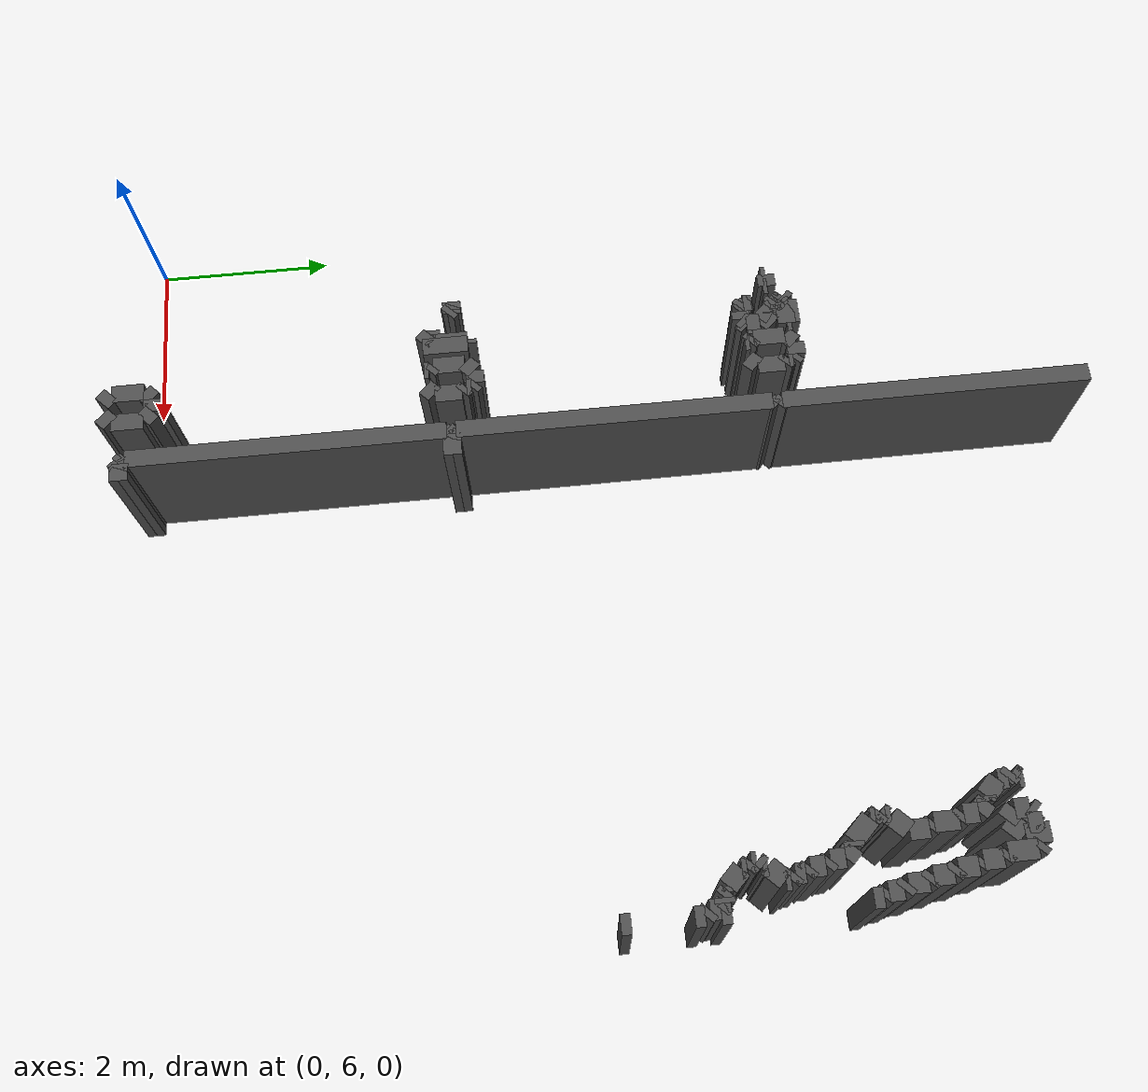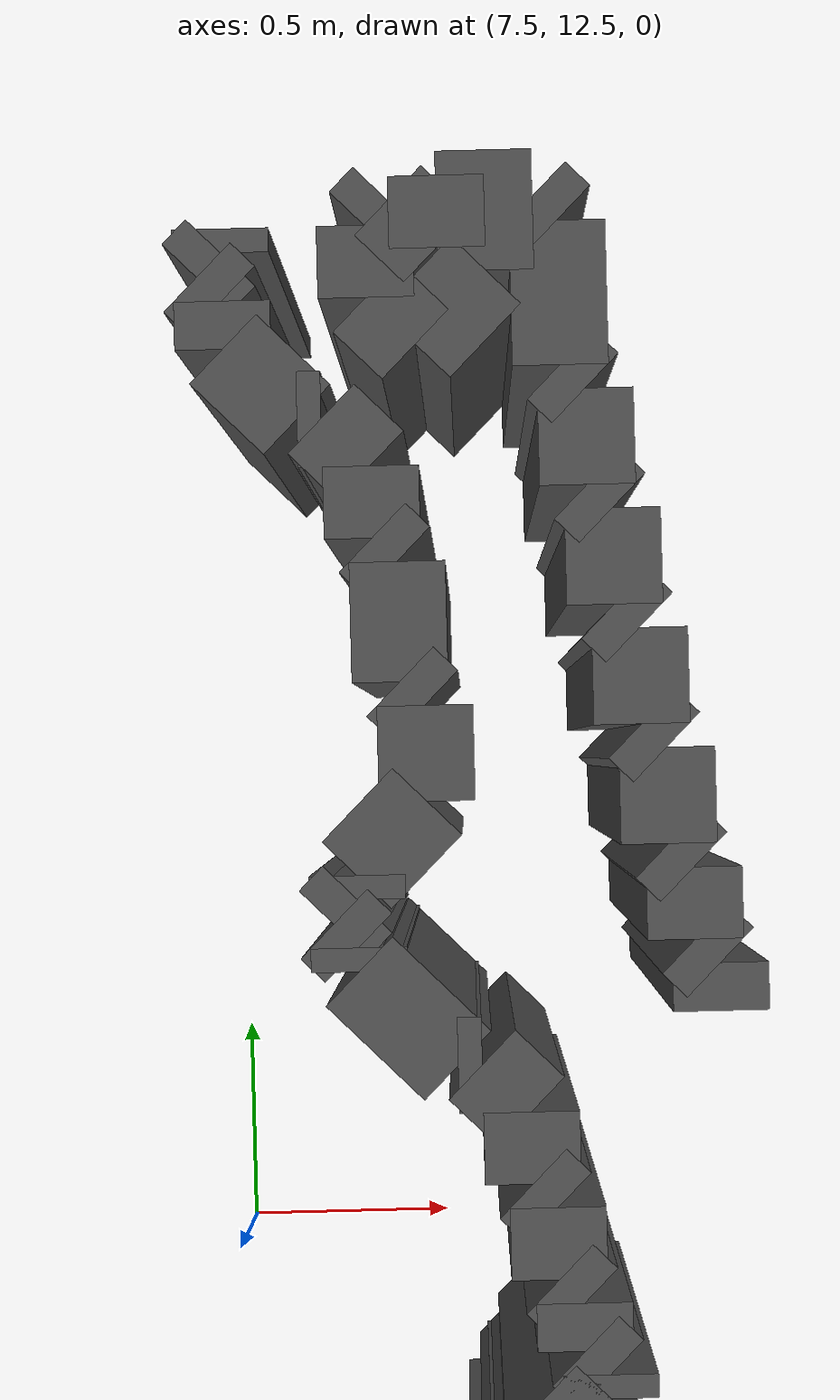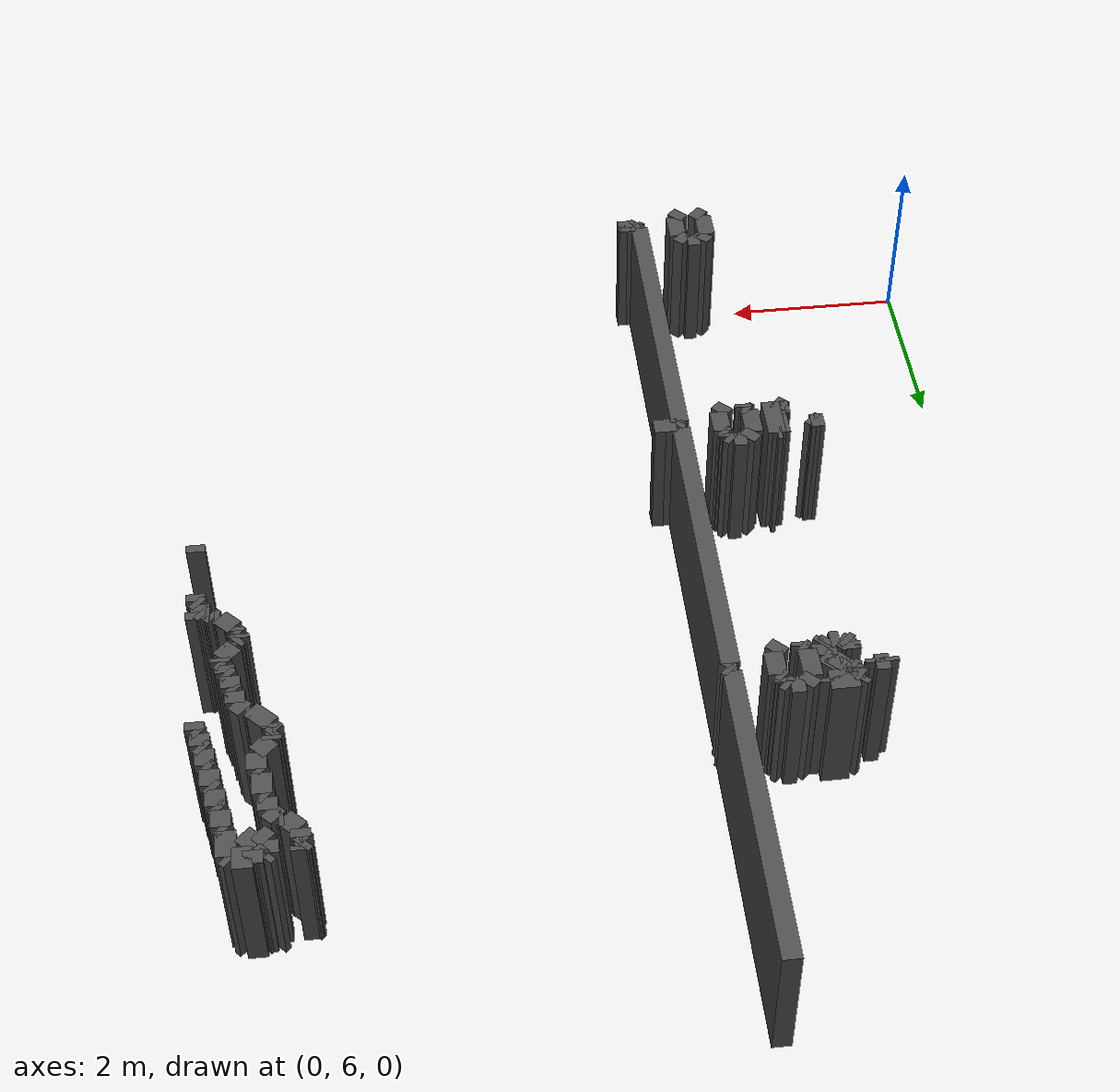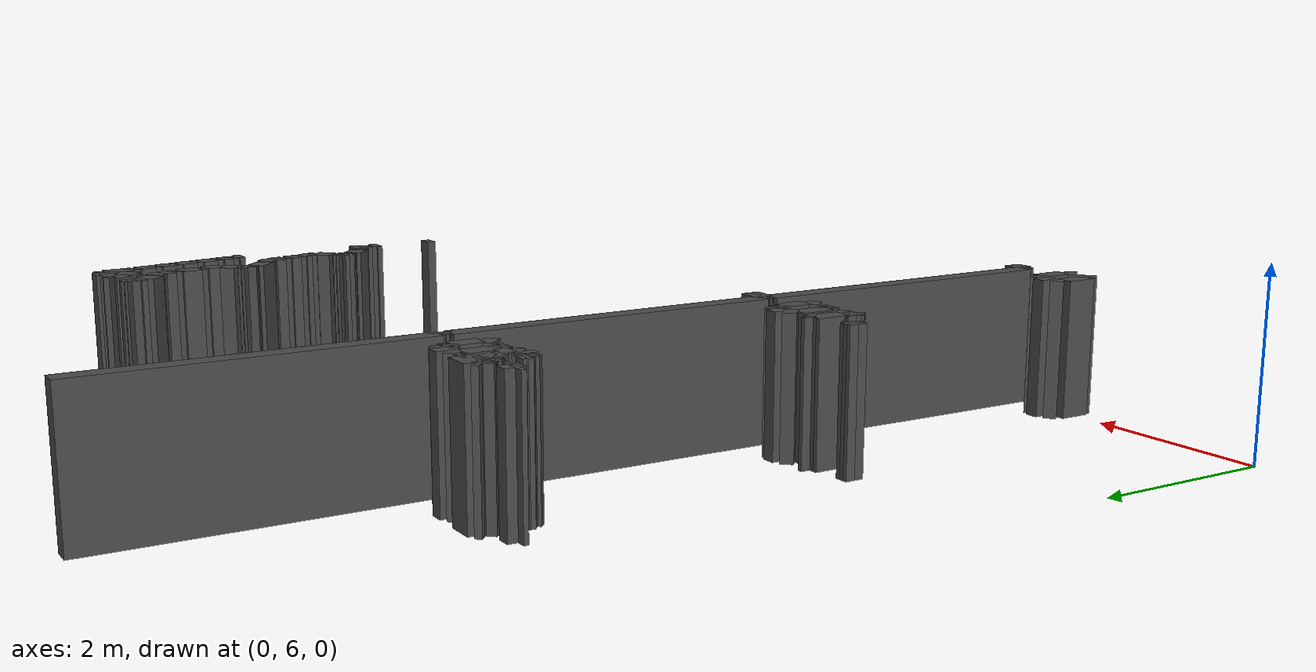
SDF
<sdf version="1.9">
 <model name="generated_walls">
  <static>true</static>
  <link name="wall_133_0">
   <pose>1.650 13.125 0.75 0 0 1.571</pose>
   <collision name="collision"><geometry><box><size>0.050 0.2 1.5</size></box></geometry></collision>
   <visual name="visual">
    <geometry><box><size>0.050 0.2 1.5</size></box></geometry>
    <material><ambient>0.3 0.3 0.3 1</ambient></material>
   </visual>
  </link>
  <link name="wall_133_1">
   <pose>1.725 13.150 0.75 0 0 0.000</pose>
   <collision name="collision"><geometry><box><size>0.150 0.2 1.5</size></box></geometry></collision>
   <visual name="visual">
    <geometry><box><size>0.150 0.2 1.5</size></box></geometry>
    <material><ambient>0.3 0.3 0.3 1</ambient></material>
   </visual>
  </link>
  <link name="wall_133_2">
   <pose>1.800 13.125 0.75 0 0 -1.571</pose>
   <collision name="collision"><geometry><box><size>0.050 0.2 1.5</size></box></geometry></collision>
   <visual name="visual">
    <geometry><box><size>0.050 0.2 1.5</size></box></geometry>
    <material><ambient>0.3 0.3 0.3 1</ambient></material>
   </visual>
  </link>
  <link name="wall_137_0">
   <pose>2.500 12.825 0.75 0 0 1.571</pose>
   <collision name="collision"><geometry><box><size>0.050 0.2 1.5</size></box></geometry></collision>
   <visual name="visual">
    <geometry><box><size>0.050 0.2 1.5</size></box></geometry>
    <material><ambient>0.3 0.3 0.3 1</ambient></material>
   </visual>
  </link>
  <link name="wall_137_1">
   <pose>2.475 12.875 0.75 0 0 2.356</pose>
   <collision name="collision"><geometry><box><size>0.071 0.2 1.5</size></box></geometry></collision>
   <visual name="visual">
    <geometry><box><size>0.071 0.2 1.5</size></box></geometry>
    <material><ambient>0.3 0.3 0.3 1</ambient></material>
   </visual>
  </link>
  <link name="wall_137_2">
   <pose>2.450 13.075 0.75 0 0 1.571</pose>
   <collision name="collision"><geometry><box><size>0.350 0.2 1.5</size></box></geometry></collision>
   <visual name="visual">
    <geometry><box><size>0.350 0.2 1.5</size></box></geometry>
    <material><ambient>0.3 0.3 0.3 1</ambient></material>
   </visual>
  </link>
  <link name="wall_137_3">
   <pose>2.500 13.300 0.75 0 0 0.785</pose>
   <collision name="collision"><geometry><box><size>0.141 0.2 1.5</size></box></geometry></collision>
   <visual name="visual">
    <geometry><box><size>0.141 0.2 1.5</size></box></geometry>
    <material><ambient>0.3 0.3 0.3 1</ambient></material>
   </visual>
  </link>
  <link name="wall_137_4">
   <pose>2.625 13.350 0.75 0 0 0.000</pose>
   <collision name="collision"><geometry><box><size>0.150 0.2 1.5</size></box></geometry></collision>
   <visual name="visual">
    <geometry><box><size>0.150 0.2 1.5</size></box></geometry>
    <material><ambient>0.3 0.3 0.3 1</ambient></material>
   </visual>
  </link>
  <link name="wall_137_5">
   <pose>2.725 13.325 0.75 0 0 -0.785</pose>
   <collision name="collision"><geometry><box><size>0.071 0.2 1.5</size></box></geometry></collision>
   <visual name="visual">
    <geometry><box><size>0.071 0.2 1.5</size></box></geometry>
    <material><ambient>0.3 0.3 0.3 1</ambient></material>
   </visual>
  </link>
  <link name="wall_137_6">
   <pose>2.750 13.275 0.75 0 0 -1.571</pose>
   <collision name="collision"><geometry><box><size>0.050 0.2 1.5</size></box></geometry></collision>
   <visual name="visual">
    <geometry><box><size>0.050 0.2 1.5</size></box></geometry>
    <material><ambient>0.3 0.3 0.3 1</ambient></material>
   </visual>
  </link>
  <link name="wall_137_7">
   <pose>2.775 13.225 0.75 0 0 -0.785</pose>
   <collision name="collision"><geometry><box><size>0.071 0.2 1.5</size></box></geometry></collision>
   <visual name="visual">
    <geometry><box><size>0.071 0.2 1.5</size></box></geometry>
    <material><ambient>0.3 0.3 0.3 1</ambient></material>
   </visual>
  </link>
  <link name="wall_137_8">
   <pose>2.800 13.050 0.75 0 0 -1.571</pose>
   <collision name="collision"><geometry><box><size>0.300 0.2 1.5</size></box></geometry></collision>
   <visual name="visual">
    <geometry><box><size>0.300 0.2 1.5</size></box></geometry>
    <material><ambient>0.3 0.3 0.3 1</ambient></material>
   </visual>
  </link>
  <link name="wall_137_9">
   <pose>2.750 12.850 0.75 0 0 -2.356</pose>
   <collision name="collision"><geometry><box><size>0.141 0.2 1.5</size></box></geometry></collision>
   <visual name="visual">
    <geometry><box><size>0.141 0.2 1.5</size></box></geometry>
    <material><ambient>0.3 0.3 0.3 1</ambient></material>
   </visual>
  </link>
  <link name="wall_138_0">
   <pose>2.025 12.825 0.75 0 0 2.356</pose>
   <collision name="collision"><geometry><box><size>0.071 0.2 1.5</size></box></geometry></collision>
   <visual name="visual">
    <geometry><box><size>0.071 0.2 1.5</size></box></geometry>
    <material><ambient>0.3 0.3 0.3 1</ambient></material>
   </visual>
  </link>
  <link name="wall_138_1">
   <pose>2.000 12.900 0.75 0 0 1.571</pose>
   <collision name="collision"><geometry><box><size>0.100 0.2 1.5</size></box></geometry></collision>
   <visual name="visual">
    <geometry><box><size>0.100 0.2 1.5</size></box></geometry>
    <material><ambient>0.3 0.3 0.3 1</ambient></material>
   </visual>
  </link>
  <link name="wall_138_2">
   <pose>2.000 12.925 0.75 0 0 -1.571</pose>
   <collision name="collision"><geometry><box><size>0.050 0.2 1.5</size></box></geometry></collision>
   <visual name="visual">
    <geometry><box><size>0.050 0.2 1.5</size></box></geometry>
    <material><ambient>0.3 0.3 0.3 1</ambient></material>
   </visual>
  </link>
  <link name="wall_138_3">
   <pose>2.050 12.850 0.75 0 0 -0.785</pose>
   <collision name="collision"><geometry><box><size>0.141 0.2 1.5</size></box></geometry></collision>
   <visual name="visual">
    <geometry><box><size>0.141 0.2 1.5</size></box></geometry>
    <material><ambient>0.3 0.3 0.3 1</ambient></material>
   </visual>
  </link>
  <link name="wall_138_4">
   <pose>2.150 12.800 0.75 0 0 0.000</pose>
   <collision name="collision"><geometry><box><size>0.100 0.2 1.5</size></box></geometry></collision>
   <visual name="visual">
    <geometry><box><size>0.100 0.2 1.5</size></box></geometry>
    <material><ambient>0.3 0.3 0.3 1</ambient></material>
   </visual>
  </link>
  <link name="wall_138_5">
   <pose>2.225 12.825 0.75 0 0 0.785</pose>
   <collision name="collision"><geometry><box><size>0.071 0.2 1.5</size></box></geometry></collision>
   <visual name="visual">
    <geometry><box><size>0.071 0.2 1.5</size></box></geometry>
    <material><ambient>0.3 0.3 0.3 1</ambient></material>
   </visual>
  </link>
  <link name="wall_138_6">
   <pose>2.250 12.925 0.75 0 0 1.571</pose>
   <collision name="collision"><geometry><box><size>0.150 0.2 1.5</size></box></geometry></collision>
   <visual name="visual">
    <geometry><box><size>0.150 0.2 1.5</size></box></geometry>
    <material><ambient>0.3 0.3 0.3 1</ambient></material>
   </visual>
  </link>
  <link name="wall_138_7">
   <pose>2.175 13.075 0.75 0 0 2.356</pose>
   <collision name="collision"><geometry><box><size>0.212 0.2 1.5</size></box></geometry></collision>
   <visual name="visual">
    <geometry><box><size>0.212 0.2 1.5</size></box></geometry>
    <material><ambient>0.3 0.3 0.3 1</ambient></material>
   </visual>
  </link>
  <link name="wall_138_8">
   <pose>2.075 13.150 0.75 0 0 3.142</pose>
   <collision name="collision"><geometry><box><size>0.050 0.2 1.5</size></box></geometry></collision>
   <visual name="visual">
    <geometry><box><size>0.050 0.2 1.5</size></box></geometry>
    <material><ambient>0.3 0.3 0.3 1</ambient></material>
   </visual>
  </link>
  <link name="wall_138_9">
   <pose>2.025 13.175 0.75 0 0 2.356</pose>
   <collision name="collision"><geometry><box><size>0.071 0.2 1.5</size></box></geometry></collision>
   <visual name="visual">
    <geometry><box><size>0.071 0.2 1.5</size></box></geometry>
    <material><ambient>0.3 0.3 0.3 1</ambient></material>
   </visual>
  </link>
  <link name="wall_138_10">
   <pose>2.000 13.225 0.75 0 0 1.571</pose>
   <collision name="collision"><geometry><box><size>0.050 0.2 1.5</size></box></geometry></collision>
   <visual name="visual">
    <geometry><box><size>0.050 0.2 1.5</size></box></geometry>
    <material><ambient>0.3 0.3 0.3 1</ambient></material>
   </visual>
  </link>
  <link name="wall_138_11">
   <pose>1.975 13.275 0.75 0 0 2.356</pose>
   <collision name="collision"><geometry><box><size>0.071 0.2 1.5</size></box></geometry></collision>
   <visual name="visual">
    <geometry><box><size>0.071 0.2 1.5</size></box></geometry>
    <material><ambient>0.3 0.3 0.3 1</ambient></material>
   </visual>
  </link>
  <link name="wall_138_12">
   <pose>1.975 13.325 0.75 0 0 0.785</pose>
   <collision name="collision"><geometry><box><size>0.071 0.2 1.5</size></box></geometry></collision>
   <visual name="visual">
    <geometry><box><size>0.071 0.2 1.5</size></box></geometry>
    <material><ambient>0.3 0.3 0.3 1</ambient></material>
   </visual>
  </link>
  <link name="wall_138_13">
   <pose>2.150 13.350 0.75 0 0 0.000</pose>
   <collision name="collision"><geometry><box><size>0.300 0.2 1.5</size></box></geometry></collision>
   <visual name="visual">
    <geometry><box><size>0.300 0.2 1.5</size></box></geometry>
    <material><ambient>0.3 0.3 0.3 1</ambient></material>
   </visual>
  </link>
  <link name="wall_138_14">
   <pose>2.300 13.325 0.75 0 0 -1.571</pose>
   <collision name="collision"><geometry><box><size>0.050 0.2 1.5</size></box></geometry></collision>
   <visual name="visual">
    <geometry><box><size>0.050 0.2 1.5</size></box></geometry>
    <material><ambient>0.3 0.3 0.3 1</ambient></material>
   </visual>
  </link>
  <link name="wall_138_15">
   <pose>2.175 13.300 0.75 0 0 3.142</pose>
   <collision name="collision"><geometry><box><size>0.250 0.2 1.5</size></box></geometry></collision>
   <visual name="visual">
    <geometry><box><size>0.250 0.2 1.5</size></box></geometry>
    <material><ambient>0.3 0.3 0.3 1</ambient></material>
   </visual>
  </link>
  <link name="wall_138_16">
   <pose>2.025 13.275 0.75 0 0 -2.356</pose>
   <collision name="collision"><geometry><box><size>0.071 0.2 1.5</size></box></geometry></collision>
   <visual name="visual">
    <geometry><box><size>0.071 0.2 1.5</size></box></geometry>
    <material><ambient>0.3 0.3 0.3 1</ambient></material>
   </visual>
  </link>
  <link name="wall_138_17">
   <pose>2.050 13.200 0.75 0 0 -0.785</pose>
   <collision name="collision"><geometry><box><size>0.141 0.2 1.5</size></box></geometry></collision>
   <visual name="visual">
    <geometry><box><size>0.141 0.2 1.5</size></box></geometry>
    <material><ambient>0.3 0.3 0.3 1</ambient></material>
   </visual>
  </link>
  <link name="wall_138_18">
   <pose>2.125 13.150 0.75 0 0 0.000</pose>
   <collision name="collision"><geometry><box><size>0.050 0.2 1.5</size></box></geometry></collision>
   <visual name="visual">
    <geometry><box><size>0.050 0.2 1.5</size></box></geometry>
    <material><ambient>0.3 0.3 0.3 1</ambient></material>
   </visual>
  </link>
  <link name="wall_138_19">
   <pose>2.225 13.075 0.75 0 0 -0.785</pose>
   <collision name="collision"><geometry><box><size>0.212 0.2 1.5</size></box></geometry></collision>
   <visual name="visual">
    <geometry><box><size>0.212 0.2 1.5</size></box></geometry>
    <material><ambient>0.3 0.3 0.3 1</ambient></material>
   </visual>
  </link>
  <link name="wall_138_20">
   <pose>2.300 12.925 0.75 0 0 -1.571</pose>
   <collision name="collision"><geometry><box><size>0.150 0.2 1.5</size></box></geometry></collision>
   <visual name="visual">
    <geometry><box><size>0.150 0.2 1.5</size></box></geometry>
    <material><ambient>0.3 0.3 0.3 1</ambient></material>
   </visual>
  </link>
  <link name="wall_138_21">
   <pose>2.275 12.825 0.75 0 0 -2.356</pose>
   <collision name="collision"><geometry><box><size>0.071 0.2 1.5</size></box></geometry></collision>
   <visual name="visual">
    <geometry><box><size>0.071 0.2 1.5</size></box></geometry>
    <material><ambient>0.3 0.3 0.3 1</ambient></material>
   </visual>
  </link>
  <link name="wall_148_0">
   <pose>1.775 9.575 0.75 0 0 2.356</pose>
   <collision name="collision"><geometry><box><size>0.071 0.2 1.5</size></box></geometry></collision>
   <visual name="visual">
    <geometry><box><size>0.071 0.2 1.5</size></box></geometry>
    <material><ambient>0.3 0.3 0.3 1</ambient></material>
   </visual>
  </link>
  <link name="wall_148_1">
   <pose>1.700 9.600 0.75 0 0 3.142</pose>
   <collision name="collision"><geometry><box><size>0.100 0.2 1.5</size></box></geometry></collision>
   <visual name="visual">
    <geometry><box><size>0.100 0.2 1.5</size></box></geometry>
    <material><ambient>0.3 0.3 0.3 1</ambient></material>
   </visual>
  </link>
  <link name="wall_148_2">
   <pose>1.725 9.600 0.75 0 0 0.000</pose>
   <collision name="collision"><geometry><box><size>0.150 0.2 1.5</size></box></geometry></collision>
   <visual name="visual">
    <geometry><box><size>0.150 0.2 1.5</size></box></geometry>
    <material><ambient>0.3 0.3 0.3 1</ambient></material>
   </visual>
  </link>
  <link name="wall_149_0">
   <pose>2.500 9.275 0.75 0 0 1.571</pose>
   <collision name="collision"><geometry><box><size>0.050 0.2 1.5</size></box></geometry></collision>
   <visual name="visual">
    <geometry><box><size>0.050 0.2 1.5</size></box></geometry>
    <material><ambient>0.3 0.3 0.3 1</ambient></material>
   </visual>
  </link>
  <link name="wall_149_1">
   <pose>2.475 9.325 0.75 0 0 2.356</pose>
   <collision name="collision"><geometry><box><size>0.071 0.2 1.5</size></box></geometry></collision>
   <visual name="visual">
    <geometry><box><size>0.071 0.2 1.5</size></box></geometry>
    <material><ambient>0.3 0.3 0.3 1</ambient></material>
   </visual>
  </link>
  <link name="wall_149_2">
   <pose>2.450 9.525 0.75 0 0 1.571</pose>
   <collision name="collision"><geometry><box><size>0.350 0.2 1.5</size></box></geometry></collision>
   <visual name="visual">
    <geometry><box><size>0.350 0.2 1.5</size></box></geometry>
    <material><ambient>0.3 0.3 0.3 1</ambient></material>
   </visual>
  </link>
  <link name="wall_149_3">
   <pose>2.500 9.750 0.75 0 0 0.785</pose>
   <collision name="collision"><geometry><box><size>0.141 0.2 1.5</size></box></geometry></collision>
   <visual name="visual">
    <geometry><box><size>0.141 0.2 1.5</size></box></geometry>
    <material><ambient>0.3 0.3 0.3 1</ambient></material>
   </visual>
  </link>
  <link name="wall_149_4">
   <pose>2.625 9.800 0.75 0 0 0.000</pose>
   <collision name="collision"><geometry><box><size>0.150 0.2 1.5</size></box></geometry></collision>
   <visual name="visual">
    <geometry><box><size>0.150 0.2 1.5</size></box></geometry>
    <material><ambient>0.3 0.3 0.3 1</ambient></material>
   </visual>
  </link>
  <link name="wall_149_5">
   <pose>2.725 9.775 0.75 0 0 -0.785</pose>
   <collision name="collision"><geometry><box><size>0.071 0.2 1.5</size></box></geometry></collision>
   <visual name="visual">
    <geometry><box><size>0.071 0.2 1.5</size></box></geometry>
    <material><ambient>0.3 0.3 0.3 1</ambient></material>
   </visual>
  </link>
  <link name="wall_149_6">
   <pose>2.750 9.725 0.75 0 0 -1.571</pose>
   <collision name="collision"><geometry><box><size>0.050 0.2 1.5</size></box></geometry></collision>
   <visual name="visual">
    <geometry><box><size>0.050 0.2 1.5</size></box></geometry>
    <material><ambient>0.3 0.3 0.3 1</ambient></material>
   </visual>
  </link>
  <link name="wall_149_7">
   <pose>2.775 9.675 0.75 0 0 -0.785</pose>
   <collision name="collision"><geometry><box><size>0.071 0.2 1.5</size></box></geometry></collision>
   <visual name="visual">
    <geometry><box><size>0.071 0.2 1.5</size></box></geometry>
    <material><ambient>0.3 0.3 0.3 1</ambient></material>
   </visual>
  </link>
  <link name="wall_149_8">
   <pose>2.800 9.500 0.75 0 0 -1.571</pose>
   <collision name="collision"><geometry><box><size>0.300 0.2 1.5</size></box></geometry></collision>
   <visual name="visual">
    <geometry><box><size>0.300 0.2 1.5</size></box></geometry>
    <material><ambient>0.3 0.3 0.3 1</ambient></material>
   </visual>
  </link>
  <link name="wall_149_9">
   <pose>2.750 9.300 0.75 0 0 -2.356</pose>
   <collision name="collision"><geometry><box><size>0.141 0.2 1.5</size></box></geometry></collision>
   <visual name="visual">
    <geometry><box><size>0.141 0.2 1.5</size></box></geometry>
    <material><ambient>0.3 0.3 0.3 1</ambient></material>
   </visual>
  </link>
  <link name="wall_150_0">
   <pose>2.100 9.300 0.75 0 0 2.356</pose>
   <collision name="collision"><geometry><box><size>0.141 0.2 1.5</size></box></geometry></collision>
   <visual name="visual">
    <geometry><box><size>0.141 0.2 1.5</size></box></geometry>
    <material><ambient>0.3 0.3 0.3 1</ambient></material>
   </visual>
  </link>
  <link name="wall_150_1">
   <pose>2.025 9.350 0.75 0 0 3.142</pose>
   <collision name="collision"><geometry><box><size>0.050 0.2 1.5</size></box></geometry></collision>
   <visual name="visual">
    <geometry><box><size>0.050 0.2 1.5</size></box></geometry>
    <material><ambient>0.3 0.3 0.3 1</ambient></material>
   </visual>
  </link>
  <link name="wall_150_2">
   <pose>2.050 9.350 0.75 0 0 0.000</pose>
   <collision name="collision"><geometry><box><size>0.100 0.2 1.5</size></box></geometry></collision>
   <visual name="visual">
    <geometry><box><size>0.100 0.2 1.5</size></box></geometry>
    <material><ambient>0.3 0.3 0.3 1</ambient></material>
   </visual>
  </link>
  <link name="wall_150_3">
   <pose>2.125 9.375 0.75 0 0 0.785</pose>
   <collision name="collision"><geometry><box><size>0.071 0.2 1.5</size></box></geometry></collision>
   <visual name="visual">
    <geometry><box><size>0.071 0.2 1.5</size></box></geometry>
    <material><ambient>0.3 0.3 0.3 1</ambient></material>
   </visual>
  </link>
  <link name="wall_150_4">
   <pose>2.150 9.575 0.75 0 0 1.571</pose>
   <collision name="collision"><geometry><box><size>0.350 0.2 1.5</size></box></geometry></collision>
   <visual name="visual">
    <geometry><box><size>0.350 0.2 1.5</size></box></geometry>
    <material><ambient>0.3 0.3 0.3 1</ambient></material>
   </visual>
  </link>
  <link name="wall_150_5">
   <pose>2.175 9.750 0.75 0 0 0.000</pose>
   <collision name="collision"><geometry><box><size>0.050 0.2 1.5</size></box></geometry></collision>
   <visual name="visual">
    <geometry><box><size>0.050 0.2 1.5</size></box></geometry>
    <material><ambient>0.3 0.3 0.3 1</ambient></material>
   </visual>
  </link>
  <link name="wall_150_6">
   <pose>2.200 9.500 0.75 0 0 -1.571</pose>
   <collision name="collision"><geometry><box><size>0.500 0.2 1.5</size></box></geometry></collision>
   <visual name="visual">
    <geometry><box><size>0.500 0.2 1.5</size></box></geometry>
    <material><ambient>0.3 0.3 0.3 1</ambient></material>
   </visual>
  </link>
  <link name="wall_151_0">
   <pose>2.500 5.800 0.75 0 0 2.356</pose>
   <collision name="collision"><geometry><box><size>0.141 0.2 1.5</size></box></geometry></collision>
   <visual name="visual">
    <geometry><box><size>0.141 0.2 1.5</size></box></geometry>
    <material><ambient>0.3 0.3 0.3 1</ambient></material>
   </visual>
  </link>
  <link name="wall_151_1">
   <pose>2.450 6.025 0.75 0 0 1.571</pose>
   <collision name="collision"><geometry><box><size>0.350 0.2 1.5</size></box></geometry></collision>
   <visual name="visual">
    <geometry><box><size>0.350 0.2 1.5</size></box></geometry>
    <material><ambient>0.3 0.3 0.3 1</ambient></material>
   </visual>
  </link>
  <link name="wall_151_2">
   <pose>2.500 6.250 0.75 0 0 0.785</pose>
   <collision name="collision"><geometry><box><size>0.141 0.2 1.5</size></box></geometry></collision>
   <visual name="visual">
    <geometry><box><size>0.141 0.2 1.5</size></box></geometry>
    <material><ambient>0.3 0.3 0.3 1</ambient></material>
   </visual>
  </link>
  <link name="wall_151_3">
   <pose>2.625 6.300 0.75 0 0 0.000</pose>
   <collision name="collision"><geometry><box><size>0.150 0.2 1.5</size></box></geometry></collision>
   <visual name="visual">
    <geometry><box><size>0.150 0.2 1.5</size></box></geometry>
    <material><ambient>0.3 0.3 0.3 1</ambient></material>
   </visual>
  </link>
  <link name="wall_151_4">
   <pose>2.750 6.250 0.75 0 0 -0.785</pose>
   <collision name="collision"><geometry><box><size>0.141 0.2 1.5</size></box></geometry></collision>
   <visual name="visual">
    <geometry><box><size>0.141 0.2 1.5</size></box></geometry>
    <material><ambient>0.3 0.3 0.3 1</ambient></material>
   </visual>
  </link>
  <link name="wall_151_5">
   <pose>2.800 6.025 0.75 0 0 -1.571</pose>
   <collision name="collision"><geometry><box><size>0.350 0.2 1.5</size></box></geometry></collision>
   <visual name="visual">
    <geometry><box><size>0.350 0.2 1.5</size></box></geometry>
    <material><ambient>0.3 0.3 0.3 1</ambient></material>
   </visual>
  </link>
  <link name="wall_151_6">
   <pose>2.750 5.800 0.75 0 0 -2.356</pose>
   <collision name="collision"><geometry><box><size>0.141 0.2 1.5</size></box></geometry></collision>
   <visual name="visual">
    <geometry><box><size>0.141 0.2 1.5</size></box></geometry>
    <material><ambient>0.3 0.3 0.3 1</ambient></material>
   </visual>
  </link>
  <link name="wall_160_30">
   <pose>3.250 14.800 0.75 0 0 -1.571</pose>
   <collision name="collision"><geometry><box><size>3.400 0.2 1.5</size></box></geometry></collision>
   <visual name="visual">
    <geometry><box><size>3.400 0.2 1.5</size></box></geometry>
    <material><ambient>0.3 0.3 0.3 1</ambient></material>
   </visual>
  </link>
  <link name="wall_160_31">
   <pose>3.275 13.075 0.75 0 0 -0.785</pose>
   <collision name="collision"><geometry><box><size>0.071 0.2 1.5</size></box></geometry></collision>
   <visual name="visual">
    <geometry><box><size>0.071 0.2 1.5</size></box></geometry>
    <material><ambient>0.3 0.3 0.3 1</ambient></material>
   </visual>
  </link>
  <link name="wall_160_32">
   <pose>3.275 13.025 0.75 0 0 -2.356</pose>
   <collision name="collision"><geometry><box><size>0.071 0.2 1.5</size></box></geometry></collision>
   <visual name="visual">
    <geometry><box><size>0.071 0.2 1.5</size></box></geometry>
    <material><ambient>0.3 0.3 0.3 1</ambient></material>
   </visual>
  </link>
  <link name="wall_160_33">
   <pose>3.250 11.275 0.75 0 0 -1.571</pose>
   <collision name="collision"><geometry><box><size>3.450 0.2 1.5</size></box></geometry></collision>
   <visual name="visual">
    <geometry><box><size>3.450 0.2 1.5</size></box></geometry>
    <material><ambient>0.3 0.3 0.3 1</ambient></material>
   </visual>
  </link>
  <link name="wall_160_34">
   <pose>3.275 9.525 0.75 0 0 -0.785</pose>
   <collision name="collision"><geometry><box><size>0.071 0.2 1.5</size></box></geometry></collision>
   <visual name="visual">
    <geometry><box><size>0.071 0.2 1.5</size></box></geometry>
    <material><ambient>0.3 0.3 0.3 1</ambient></material>
   </visual>
  </link>
  <link name="wall_160_35">
   <pose>3.425 9.500 0.75 0 0 0.000</pose>
   <collision name="collision"><geometry><box><size>0.250 0.2 1.5</size></box></geometry></collision>
   <visual name="visual">
    <geometry><box><size>0.250 0.2 1.5</size></box></geometry>
    <material><ambient>0.3 0.3 0.3 1</ambient></material>
   </visual>
  </link>
  <link name="wall_160_36">
   <pose>3.425 9.500 0.75 0 0 3.142</pose>
   <collision name="collision"><geometry><box><size>0.250 0.2 1.5</size></box></geometry></collision>
   <visual name="visual">
    <geometry><box><size>0.250 0.2 1.5</size></box></geometry>
    <material><ambient>0.3 0.3 0.3 1</ambient></material>
   </visual>
  </link>
  <link name="wall_160_37">
   <pose>3.275 9.475 0.75 0 0 -2.356</pose>
   <collision name="collision"><geometry><box><size>0.071 0.2 1.5</size></box></geometry></collision>
   <visual name="visual">
    <geometry><box><size>0.071 0.2 1.5</size></box></geometry>
    <material><ambient>0.3 0.3 0.3 1</ambient></material>
   </visual>
  </link>
  <link name="wall_160_38">
   <pose>3.250 7.725 0.75 0 0 -1.571</pose>
   <collision name="collision"><geometry><box><size>3.450 0.2 1.5</size></box></geometry></collision>
   <visual name="visual">
    <geometry><box><size>3.450 0.2 1.5</size></box></geometry>
    <material><ambient>0.3 0.3 0.3 1</ambient></material>
   </visual>
  </link>
  <link name="wall_160_39">
   <pose>3.275 5.975 0.75 0 0 -0.785</pose>
   <collision name="collision"><geometry><box><size>0.071 0.2 1.5</size></box></geometry></collision>
   <visual name="visual">
    <geometry><box><size>0.071 0.2 1.5</size></box></geometry>
    <material><ambient>0.3 0.3 0.3 1</ambient></material>
   </visual>
  </link>
  <link name="wall_160_40">
   <pose>3.400 5.950 0.75 0 0 0.000</pose>
   <collision name="collision"><geometry><box><size>0.200 0.2 1.5</size></box></geometry></collision>
   <visual name="visual">
    <geometry><box><size>0.200 0.2 1.5</size></box></geometry>
    <material><ambient>0.3 0.3 0.3 1</ambient></material>
   </visual>
  </link>
  <link name="wall_160_41">
   <pose>3.400 5.950 0.75 0 0 3.142</pose>
   <collision name="collision"><geometry><box><size>0.200 0.2 1.5</size></box></geometry></collision>
   <visual name="visual">
    <geometry><box><size>0.200 0.2 1.5</size></box></geometry>
    <material><ambient>0.3 0.3 0.3 1</ambient></material>
   </visual>
  </link>
  <link name="wall_160_42">
   <pose>3.275 5.925 0.75 0 0 -2.356</pose>
   <collision name="collision"><geometry><box><size>0.071 0.2 1.5</size></box></geometry></collision>
   <visual name="visual">
    <geometry><box><size>0.071 0.2 1.5</size></box></geometry>
    <material><ambient>0.3 0.3 0.3 1</ambient></material>
   </visual>
  </link>
  <link name="wall_161_140">
   <pose>8.600 10.800 0.75 0 0 1.571</pose>
   <collision name="collision"><geometry><box><size>0.100 0.2 1.5</size></box></geometry></collision>
   <visual name="visual">
    <geometry><box><size>0.100 0.2 1.5</size></box></geometry>
    <material><ambient>0.3 0.3 0.3 1</ambient></material>
   </visual>
  </link>
  <link name="wall_161_150">
   <pose>8.600 11.500 0.75 0 0 1.571</pose>
   <collision name="collision"><geometry><box><size>0.100 0.2 1.5</size></box></geometry></collision>
   <visual name="visual">
    <geometry><box><size>0.100 0.2 1.5</size></box></geometry>
    <material><ambient>0.3 0.3 0.3 1</ambient></material>
   </visual>
  </link>
  <link name="wall_161_151">
   <pose>8.575 11.575 0.75 0 0 2.356</pose>
   <collision name="collision"><geometry><box><size>0.071 0.2 1.5</size></box></geometry></collision>
   <visual name="visual">
    <geometry><box><size>0.071 0.2 1.5</size></box></geometry>
    <material><ambient>0.3 0.3 0.3 1</ambient></material>
   </visual>
  </link>
  <link name="wall_161_152">
   <pose>8.550 11.650 0.75 0 0 1.571</pose>
   <collision name="collision"><geometry><box><size>0.100 0.2 1.5</size></box></geometry></collision>
   <visual name="visual">
    <geometry><box><size>0.100 0.2 1.5</size></box></geometry>
    <material><ambient>0.3 0.3 0.3 1</ambient></material>
   </visual>
  </link>
  <link name="wall_161_153">
   <pose>8.525 11.725 0.75 0 0 2.356</pose>
   <collision name="collision"><geometry><box><size>0.071 0.2 1.5</size></box></geometry></collision>
   <visual name="visual">
    <geometry><box><size>0.071 0.2 1.5</size></box></geometry>
    <material><ambient>0.3 0.3 0.3 1</ambient></material>
   </visual>
  </link>
  <link name="wall_161_154">
   <pose>8.475 11.750 0.75 0 0 3.142</pose>
   <collision name="collision"><geometry><box><size>0.050 0.2 1.5</size></box></geometry></collision>
   <visual name="visual">
    <geometry><box><size>0.050 0.2 1.5</size></box></geometry>
    <material><ambient>0.3 0.3 0.3 1</ambient></material>
   </visual>
  </link>
  <link name="wall_161_155">
   <pose>8.425 11.775 0.75 0 0 2.356</pose>
   <collision name="collision"><geometry><box><size>0.071 0.2 1.5</size></box></geometry></collision>
   <visual name="visual">
    <geometry><box><size>0.071 0.2 1.5</size></box></geometry>
    <material><ambient>0.3 0.3 0.3 1</ambient></material>
   </visual>
  </link>
  <link name="wall_161_156">
   <pose>8.375 11.800 0.75 0 0 3.142</pose>
   <collision name="collision"><geometry><box><size>0.050 0.2 1.5</size></box></geometry></collision>
   <visual name="visual">
    <geometry><box><size>0.050 0.2 1.5</size></box></geometry>
    <material><ambient>0.3 0.3 0.3 1</ambient></material>
   </visual>
  </link>
  <link name="wall_161_157">
   <pose>8.275 11.875 0.75 0 0 2.356</pose>
   <collision name="collision"><geometry><box><size>0.212 0.2 1.5</size></box></geometry></collision>
   <visual name="visual">
    <geometry><box><size>0.212 0.2 1.5</size></box></geometry>
    <material><ambient>0.3 0.3 0.3 1</ambient></material>
   </visual>
  </link>
  <link name="wall_161_158">
   <pose>8.200 11.975 0.75 0 0 1.571</pose>
   <collision name="collision"><geometry><box><size>0.050 0.2 1.5</size></box></geometry></collision>
   <visual name="visual">
    <geometry><box><size>0.050 0.2 1.5</size></box></geometry>
    <material><ambient>0.3 0.3 0.3 1</ambient></material>
   </visual>
  </link>
  <link name="wall_161_159">
   <pose>8.175 12.025 0.75 0 0 2.356</pose>
   <collision name="collision"><geometry><box><size>0.071 0.2 1.5</size></box></geometry></collision>
   <visual name="visual">
    <geometry><box><size>0.071 0.2 1.5</size></box></geometry>
    <material><ambient>0.3 0.3 0.3 1</ambient></material>
   </visual>
  </link>
  <link name="wall_161_160">
   <pose>8.150 12.075 0.75 0 0 1.571</pose>
   <collision name="collision"><geometry><box><size>0.050 0.2 1.5</size></box></geometry></collision>
   <visual name="visual">
    <geometry><box><size>0.050 0.2 1.5</size></box></geometry>
    <material><ambient>0.3 0.3 0.3 1</ambient></material>
   </visual>
  </link>
  <link name="wall_161_161">
   <pose>8.175 12.125 0.75 0 0 0.785</pose>
   <collision name="collision"><geometry><box><size>0.071 0.2 1.5</size></box></geometry></collision>
   <visual name="visual">
    <geometry><box><size>0.071 0.2 1.5</size></box></geometry>
    <material><ambient>0.3 0.3 0.3 1</ambient></material>
   </visual>
  </link>
  <link name="wall_161_162">
   <pose>8.200 12.175 0.75 0 0 1.571</pose>
   <collision name="collision"><geometry><box><size>0.050 0.2 1.5</size></box></geometry></collision>
   <visual name="visual">
    <geometry><box><size>0.050 0.2 1.5</size></box></geometry>
    <material><ambient>0.3 0.3 0.3 1</ambient></material>
   </visual>
  </link>
  <link name="wall_161_163">
   <pose>8.275 12.275 0.75 0 0 0.785</pose>
   <collision name="collision"><geometry><box><size>0.212 0.2 1.5</size></box></geometry></collision>
   <visual name="visual">
    <geometry><box><size>0.212 0.2 1.5</size></box></geometry>
    <material><ambient>0.3 0.3 0.3 1</ambient></material>
   </visual>
  </link>
  <link name="wall_161_164">
   <pose>8.350 12.375 0.75 0 0 1.571</pose>
   <collision name="collision"><geometry><box><size>0.050 0.2 1.5</size></box></geometry></collision>
   <visual name="visual">
    <geometry><box><size>0.050 0.2 1.5</size></box></geometry>
    <material><ambient>0.3 0.3 0.3 1</ambient></material>
   </visual>
  </link>
  <link name="wall_161_165">
   <pose>8.325 12.425 0.75 0 0 2.356</pose>
   <collision name="collision"><geometry><box><size>0.071 0.2 1.5</size></box></geometry></collision>
   <visual name="visual">
    <geometry><box><size>0.071 0.2 1.5</size></box></geometry>
    <material><ambient>0.3 0.3 0.3 1</ambient></material>
   </visual>
  </link>
  <link name="wall_161_166">
   <pose>8.300 12.500 0.75 0 0 1.571</pose>
   <collision name="collision"><geometry><box><size>0.100 0.2 1.5</size></box></geometry></collision>
   <visual name="visual">
    <geometry><box><size>0.100 0.2 1.5</size></box></geometry>
    <material><ambient>0.3 0.3 0.3 1</ambient></material>
   </visual>
  </link>
  <link name="wall_161_167">
   <pose>8.275 12.575 0.75 0 0 2.356</pose>
   <collision name="collision"><geometry><box><size>0.071 0.2 1.5</size></box></geometry></collision>
   <visual name="visual">
    <geometry><box><size>0.071 0.2 1.5</size></box></geometry>
    <material><ambient>0.3 0.3 0.3 1</ambient></material>
   </visual>
  </link>
  <link name="wall_161_168">
   <pose>8.250 12.675 0.75 0 0 1.571</pose>
   <collision name="collision"><geometry><box><size>0.150 0.2 1.5</size></box></geometry></collision>
   <visual name="visual">
    <geometry><box><size>0.150 0.2 1.5</size></box></geometry>
    <material><ambient>0.3 0.3 0.3 1</ambient></material>
   </visual>
  </link>
  <link name="wall_161_169">
   <pose>8.225 12.775 0.75 0 0 2.356</pose>
   <collision name="collision"><geometry><box><size>0.071 0.2 1.5</size></box></geometry></collision>
   <visual name="visual">
    <geometry><box><size>0.071 0.2 1.5</size></box></geometry>
    <material><ambient>0.3 0.3 0.3 1</ambient></material>
   </visual>
  </link>
  <link name="wall_161_170">
   <pose>8.200 12.875 0.75 0 0 1.571</pose>
   <collision name="collision"><geometry><box><size>0.150 0.2 1.5</size></box></geometry></collision>
   <visual name="visual">
    <geometry><box><size>0.150 0.2 1.5</size></box></geometry>
    <material><ambient>0.3 0.3 0.3 1</ambient></material>
   </visual>
  </link>
  <link name="wall_161_171">
   <pose>8.150 13.000 0.75 0 0 2.356</pose>
   <collision name="collision"><geometry><box><size>0.141 0.2 1.5</size></box></geometry></collision>
   <visual name="visual">
    <geometry><box><size>0.141 0.2 1.5</size></box></geometry>
    <material><ambient>0.3 0.3 0.3 1</ambient></material>
   </visual>
  </link>
  <link name="wall_161_172">
   <pose>8.075 13.050 0.75 0 0 3.142</pose>
   <collision name="collision"><geometry><box><size>0.050 0.2 1.5</size></box></geometry></collision>
   <visual name="visual">
    <geometry><box><size>0.050 0.2 1.5</size></box></geometry>
    <material><ambient>0.3 0.3 0.3 1</ambient></material>
   </visual>
  </link>
  <link name="wall_161_173">
   <pose>7.950 13.150 0.75 0 0 2.356</pose>
   <collision name="collision"><geometry><box><size>0.283 0.2 1.5</size></box></geometry></collision>
   <visual name="visual">
    <geometry><box><size>0.283 0.2 1.5</size></box></geometry>
    <material><ambient>0.3 0.3 0.3 1</ambient></material>
   </visual>
  </link>
  <link name="wall_161_174">
   <pose>7.850 13.275 0.75 0 0 1.571</pose>
   <collision name="collision"><geometry><box><size>0.050 0.2 1.5</size></box></geometry></collision>
   <visual name="visual">
    <geometry><box><size>0.050 0.2 1.5</size></box></geometry>
    <material><ambient>0.3 0.3 0.3 1</ambient></material>
   </visual>
  </link>
  <link name="wall_161_175">
   <pose>7.825 13.325 0.75 0 0 2.356</pose>
   <collision name="collision"><geometry><box><size>0.071 0.2 1.5</size></box></geometry></collision>
   <visual name="visual">
    <geometry><box><size>0.071 0.2 1.5</size></box></geometry>
    <material><ambient>0.3 0.3 0.3 1</ambient></material>
   </visual>
  </link>
  <link name="wall_161_176">
   <pose>7.825 13.375 0.75 0 0 0.785</pose>
   <collision name="collision"><geometry><box><size>0.071 0.2 1.5</size></box></geometry></collision>
   <visual name="visual">
    <geometry><box><size>0.071 0.2 1.5</size></box></geometry>
    <material><ambient>0.3 0.3 0.3 1</ambient></material>
   </visual>
  </link>
  <link name="wall_161_177">
   <pose>7.850 13.425 0.75 0 0 1.571</pose>
   <collision name="collision"><geometry><box><size>0.050 0.2 1.5</size></box></geometry></collision>
   <visual name="visual">
    <geometry><box><size>0.050 0.2 1.5</size></box></geometry>
    <material><ambient>0.3 0.3 0.3 1</ambient></material>
   </visual>
  </link>
  <link name="wall_161_178">
   <pose>7.925 13.525 0.75 0 0 0.785</pose>
   <collision name="collision"><geometry><box><size>0.212 0.2 1.5</size></box></geometry></collision>
   <visual name="visual">
    <geometry><box><size>0.212 0.2 1.5</size></box></geometry>
    <material><ambient>0.3 0.3 0.3 1</ambient></material>
   </visual>
  </link>
  <link name="wall_161_179">
   <pose>8.000 13.700 0.75 0 0 1.571</pose>
   <collision name="collision"><geometry><box><size>0.200 0.2 1.5</size></box></geometry></collision>
   <visual name="visual">
    <geometry><box><size>0.200 0.2 1.5</size></box></geometry>
    <material><ambient>0.3 0.3 0.3 1</ambient></material>
   </visual>
  </link>
  <link name="wall_161_180">
   <pose>7.975 13.825 0.75 0 0 2.356</pose>
   <collision name="collision"><geometry><box><size>0.071 0.2 1.5</size></box></geometry></collision>
   <visual name="visual">
    <geometry><box><size>0.071 0.2 1.5</size></box></geometry>
    <material><ambient>0.3 0.3 0.3 1</ambient></material>
   </visual>
  </link>
  <link name="wall_161_181">
   <pose>7.950 13.975 0.75 0 0 1.571</pose>
   <collision name="collision"><geometry><box><size>0.250 0.2 1.5</size></box></geometry></collision>
   <visual name="visual">
    <geometry><box><size>0.250 0.2 1.5</size></box></geometry>
    <material><ambient>0.3 0.3 0.3 1</ambient></material>
   </visual>
  </link>
  <link name="wall_161_182">
   <pose>7.925 14.125 0.75 0 0 2.356</pose>
   <collision name="collision"><geometry><box><size>0.071 0.2 1.5</size></box></geometry></collision>
   <visual name="visual">
    <geometry><box><size>0.071 0.2 1.5</size></box></geometry>
    <material><ambient>0.3 0.3 0.3 1</ambient></material>
   </visual>
  </link>
  <link name="wall_161_183">
   <pose>7.900 14.225 0.75 0 0 1.571</pose>
   <collision name="collision"><geometry><box><size>0.150 0.2 1.5</size></box></geometry></collision>
   <visual name="visual">
    <geometry><box><size>0.150 0.2 1.5</size></box></geometry>
    <material><ambient>0.3 0.3 0.3 1</ambient></material>
   </visual>
  </link>
  <link name="wall_161_184">
   <pose>7.850 14.350 0.75 0 0 2.356</pose>
   <collision name="collision"><geometry><box><size>0.141 0.2 1.5</size></box></geometry></collision>
   <visual name="visual">
    <geometry><box><size>0.141 0.2 1.5</size></box></geometry>
    <material><ambient>0.3 0.3 0.3 1</ambient></material>
   </visual>
  </link>
  <link name="wall_161_185">
   <pose>7.775 14.400 0.75 0 0 3.142</pose>
   <collision name="collision"><geometry><box><size>0.050 0.2 1.5</size></box></geometry></collision>
   <visual name="visual">
    <geometry><box><size>0.050 0.2 1.5</size></box></geometry>
    <material><ambient>0.3 0.3 0.3 1</ambient></material>
   </visual>
  </link>
  <link name="wall_161_186">
   <pose>7.675 14.475 0.75 0 0 2.356</pose>
   <collision name="collision"><geometry><box><size>0.212 0.2 1.5</size></box></geometry></collision>
   <visual name="visual">
    <geometry><box><size>0.212 0.2 1.5</size></box></geometry>
    <material><ambient>0.3 0.3 0.3 1</ambient></material>
   </visual>
  </link>
  <link name="wall_161_187">
   <pose>7.600 14.600 0.75 0 0 1.571</pose>
   <collision name="collision"><geometry><box><size>0.100 0.2 1.5</size></box></geometry></collision>
   <visual name="visual">
    <geometry><box><size>0.100 0.2 1.5</size></box></geometry>
    <material><ambient>0.3 0.3 0.3 1</ambient></material>
   </visual>
  </link>
  <link name="wall_161_188">
   <pose>7.575 14.675 0.75 0 0 2.356</pose>
   <collision name="collision"><geometry><box><size>0.071 0.2 1.5</size></box></geometry></collision>
   <visual name="visual">
    <geometry><box><size>0.071 0.2 1.5</size></box></geometry>
    <material><ambient>0.3 0.3 0.3 1</ambient></material>
   </visual>
  </link>
  <link name="wall_161_189">
   <pose>7.575 14.725 0.75 0 0 0.785</pose>
   <collision name="collision"><geometry><box><size>0.071 0.2 1.5</size></box></geometry></collision>
   <visual name="visual">
    <geometry><box><size>0.071 0.2 1.5</size></box></geometry>
    <material><ambient>0.3 0.3 0.3 1</ambient></material>
   </visual>
  </link>
  <link name="wall_161_190">
   <pose>7.600 14.775 0.75 0 0 1.571</pose>
   <collision name="collision"><geometry><box><size>0.050 0.2 1.5</size></box></geometry></collision>
   <visual name="visual">
    <geometry><box><size>0.050 0.2 1.5</size></box></geometry>
    <material><ambient>0.3 0.3 0.3 1</ambient></material>
   </visual>
  </link>
  <link name="wall_161_909">
   <pose>8.050 14.825 0.75 0 0 -1.571</pose>
   <collision name="collision"><geometry><box><size>0.150 0.2 1.5</size></box></geometry></collision>
   <visual name="visual">
    <geometry><box><size>0.150 0.2 1.5</size></box></geometry>
    <material><ambient>0.3 0.3 0.3 1</ambient></material>
   </visual>
  </link>
  <link name="wall_161_910">
   <pose>8.000 14.800 0.75 0 0 2.356</pose>
   <collision name="collision"><geometry><box><size>0.141 0.2 1.5</size></box></geometry></collision>
   <visual name="visual">
    <geometry><box><size>0.141 0.2 1.5</size></box></geometry>
    <material><ambient>0.3 0.3 0.3 1</ambient></material>
   </visual>
  </link>
  <link name="wall_161_911">
   <pose>7.925 14.825 0.75 0 0 -2.356</pose>
   <collision name="collision"><geometry><box><size>0.071 0.2 1.5</size></box></geometry></collision>
   <visual name="visual">
    <geometry><box><size>0.071 0.2 1.5</size></box></geometry>
    <material><ambient>0.3 0.3 0.3 1</ambient></material>
   </visual>
  </link>
  <link name="wall_161_912">
   <pose>7.900 14.725 0.75 0 0 -1.571</pose>
   <collision name="collision"><geometry><box><size>0.150 0.2 1.5</size></box></geometry></collision>
   <visual name="visual">
    <geometry><box><size>0.150 0.2 1.5</size></box></geometry>
    <material><ambient>0.3 0.3 0.3 1</ambient></material>
   </visual>
  </link>
  <link name="wall_161_913">
   <pose>7.950 14.600 0.75 0 0 -0.785</pose>
   <collision name="collision"><geometry><box><size>0.141 0.2 1.5</size></box></geometry></collision>
   <visual name="visual">
    <geometry><box><size>0.141 0.2 1.5</size></box></geometry>
    <material><ambient>0.3 0.3 0.3 1</ambient></material>
   </visual>
  </link>
  <link name="wall_161_914">
   <pose>8.075 14.625 0.75 0 0 0.785</pose>
   <collision name="collision"><geometry><box><size>0.212 0.2 1.5</size></box></geometry></collision>
   <visual name="visual">
    <geometry><box><size>0.212 0.2 1.5</size></box></geometry>
    <material><ambient>0.3 0.3 0.3 1</ambient></material>
   </visual>
  </link>
  <link name="wall_161_915">
   <pose>8.150 14.825 0.75 0 0 1.571</pose>
   <collision name="collision"><geometry><box><size>0.250 0.2 1.5</size></box></geometry></collision>
   <visual name="visual">
    <geometry><box><size>0.250 0.2 1.5</size></box></geometry>
    <material><ambient>0.3 0.3 0.3 1</ambient></material>
   </visual>
  </link>
  <link name="wall_161_936">
   <pose>8.275 14.825 0.75 0 0 -0.785</pose>
   <collision name="collision"><geometry><box><size>0.071 0.2 1.5</size></box></geometry></collision>
   <visual name="visual">
    <geometry><box><size>0.071 0.2 1.5</size></box></geometry>
    <material><ambient>0.3 0.3 0.3 1</ambient></material>
   </visual>
  </link>
  <link name="wall_161_937">
   <pose>8.300 14.650 0.75 0 0 -1.571</pose>
   <collision name="collision"><geometry><box><size>0.300 0.2 1.5</size></box></geometry></collision>
   <visual name="visual">
    <geometry><box><size>0.300 0.2 1.5</size></box></geometry>
    <material><ambient>0.3 0.3 0.3 1</ambient></material>
   </visual>
  </link>
  <link name="wall_161_938">
   <pose>8.325 14.475 0.75 0 0 -0.785</pose>
   <collision name="collision"><geometry><box><size>0.071 0.2 1.5</size></box></geometry></collision>
   <visual name="visual">
    <geometry><box><size>0.071 0.2 1.5</size></box></geometry>
    <material><ambient>0.3 0.3 0.3 1</ambient></material>
   </visual>
  </link>
  <link name="wall_161_939">
   <pose>8.350 14.350 0.75 0 0 -1.571</pose>
   <collision name="collision"><geometry><box><size>0.200 0.2 1.5</size></box></geometry></collision>
   <visual name="visual">
    <geometry><box><size>0.200 0.2 1.5</size></box></geometry>
    <material><ambient>0.3 0.3 0.3 1</ambient></material>
   </visual>
  </link>
  <link name="wall_161_940">
   <pose>8.375 14.225 0.75 0 0 -0.785</pose>
   <collision name="collision"><geometry><box><size>0.071 0.2 1.5</size></box></geometry></collision>
   <visual name="visual">
    <geometry><box><size>0.071 0.2 1.5</size></box></geometry>
    <material><ambient>0.3 0.3 0.3 1</ambient></material>
   </visual>
  </link>
  <link name="wall_161_941">
   <pose>8.400 14.100 0.75 0 0 -1.571</pose>
   <collision name="collision"><geometry><box><size>0.200 0.2 1.5</size></box></geometry></collision>
   <visual name="visual">
    <geometry><box><size>0.200 0.2 1.5</size></box></geometry>
    <material><ambient>0.3 0.3 0.3 1</ambient></material>
   </visual>
  </link>
  <link name="wall_161_942">
   <pose>8.425 13.975 0.75 0 0 -0.785</pose>
   <collision name="collision"><geometry><box><size>0.071 0.2 1.5</size></box></geometry></collision>
   <visual name="visual">
    <geometry><box><size>0.071 0.2 1.5</size></box></geometry>
    <material><ambient>0.3 0.3 0.3 1</ambient></material>
   </visual>
  </link>
  <link name="wall_161_943">
   <pose>8.450 13.850 0.75 0 0 -1.571</pose>
   <collision name="collision"><geometry><box><size>0.200 0.2 1.5</size></box></geometry></collision>
   <visual name="visual">
    <geometry><box><size>0.200 0.2 1.5</size></box></geometry>
    <material><ambient>0.3 0.3 0.3 1</ambient></material>
   </visual>
  </link>
  <link name="wall_161_944">
   <pose>8.475 13.725 0.75 0 0 -0.785</pose>
   <collision name="collision"><geometry><box><size>0.071 0.2 1.5</size></box></geometry></collision>
   <visual name="visual">
    <geometry><box><size>0.071 0.2 1.5</size></box></geometry>
    <material><ambient>0.3 0.3 0.3 1</ambient></material>
   </visual>
  </link>
  <link name="wall_161_945">
   <pose>8.500 13.600 0.75 0 0 -1.571</pose>
   <collision name="collision"><geometry><box><size>0.200 0.2 1.5</size></box></geometry></collision>
   <visual name="visual">
    <geometry><box><size>0.200 0.2 1.5</size></box></geometry>
    <material><ambient>0.3 0.3 0.3 1</ambient></material>
   </visual>
  </link>
  <link name="wall_161_946">
   <pose>8.525 13.475 0.75 0 0 -0.785</pose>
   <collision name="collision"><geometry><box><size>0.071 0.2 1.5</size></box></geometry></collision>
   <visual name="visual">
    <geometry><box><size>0.071 0.2 1.5</size></box></geometry>
    <material><ambient>0.3 0.3 0.3 1</ambient></material>
   </visual>
  </link>
  <link name="wall_161_947">
   <pose>8.550 13.375 0.75 0 0 -1.571</pose>
   <collision name="collision"><geometry><box><size>0.150 0.2 1.5</size></box></geometry></collision>
   <visual name="visual">
    <geometry><box><size>0.150 0.2 1.5</size></box></geometry>
    <material><ambient>0.3 0.3 0.3 1</ambient></material>
   </visual>
  </link>
  <link name="wall_161_948">
   <pose>8.575 13.275 0.75 0 0 -0.785</pose>
   <collision name="collision"><geometry><box><size>0.071 0.2 1.5</size></box></geometry></collision>
   <visual name="visual">
    <geometry><box><size>0.071 0.2 1.5</size></box></geometry>
    <material><ambient>0.3 0.3 0.3 1</ambient></material>
   </visual>
  </link>
  <link name="wall_161_949">
   <pose>8.600 13.200 0.75 0 0 -1.571</pose>
   <collision name="collision"><geometry><box><size>0.100 0.2 1.5</size></box></geometry></collision>
   <visual name="visual">
    <geometry><box><size>0.100 0.2 1.5</size></box></geometry>
    <material><ambient>0.3 0.3 0.3 1</ambient></material>
   </visual>
  </link>
  <link name="wall_161_1019">
   <pose>8.600 11.750 0.75 0 0 -1.571</pose>
   <collision name="collision"><geometry><box><size>0.100 0.2 1.5</size></box></geometry></collision>
   <visual name="visual">
    <geometry><box><size>0.100 0.2 1.5</size></box></geometry>
    <material><ambient>0.3 0.3 0.3 1</ambient></material>
   </visual>
  </link>
 </model>
</sdf>
